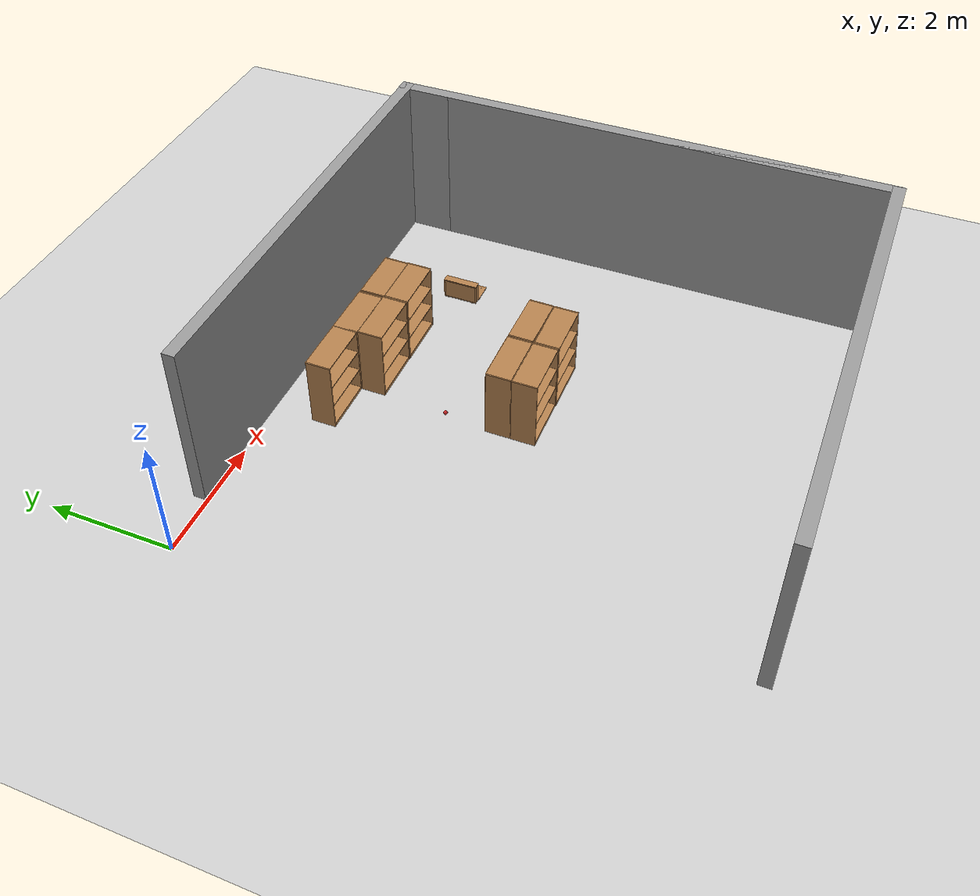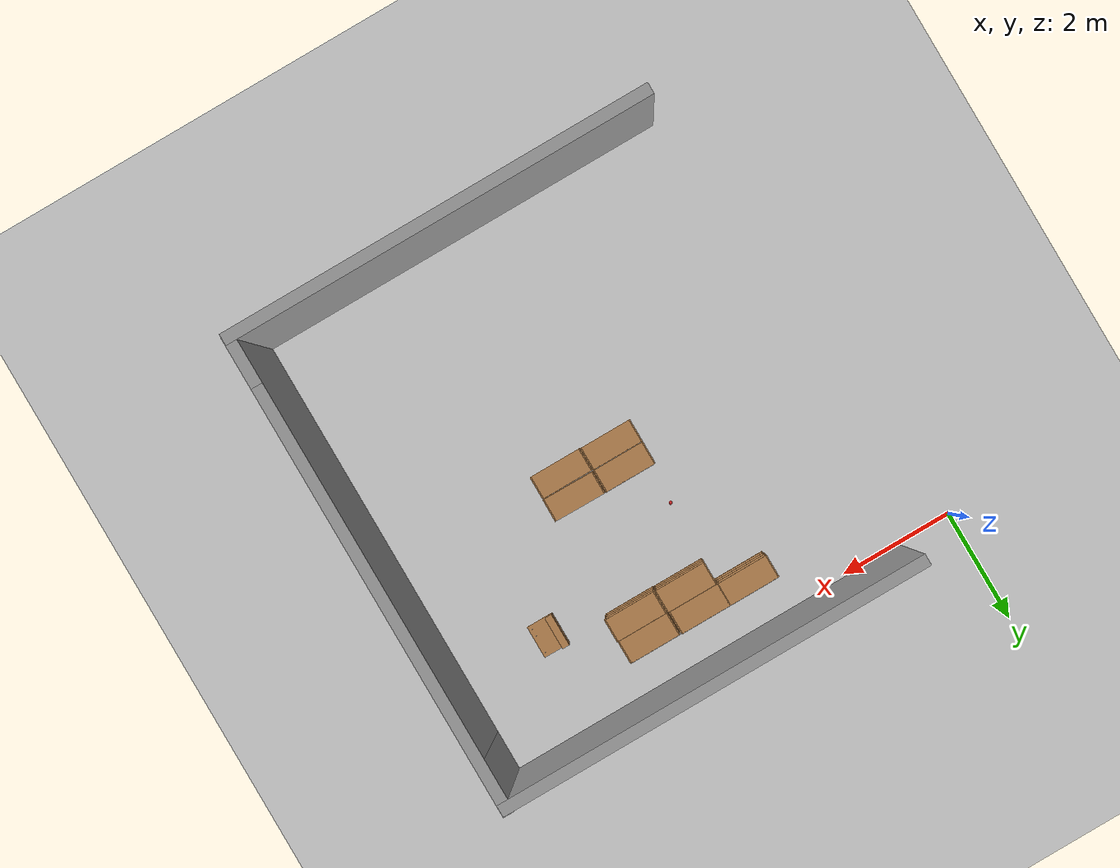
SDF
<sdf version="1.6">
 <world name="default">
  <model name="ground_plane">
   <static>1</static>
   <link name="link">
    <collision name="collision">
     <geometry><plane><normal>0 0 1</normal><size>100 100</size></plane></geometry>
     <surface><friction><ode><mu>100</mu><mu2>50</mu2></ode></friction></surface>
    </collision>
    <visual name="visual">
     <cast_shadows>0</cast_shadows>
     <geometry><plane><normal>0 0 1</normal><size>100 100</size></plane></geometry>
     <material>
      <script><uri>file://media/materials/scripts/gazebo.material</uri><name>Gazebo/Grey</name></script>
     </material>
    </visual>
   </link>
  </model>
  <model name="bookshelf_clone_1">
   <static>1</static>
   <link name="link">
    <inertial><mass>1</mass></inertial>
    <collision name="back">
     <pose>0 0.005 0.6 0 -0 0</pose>
     <geometry><box><size>0.9 0.01 1.2</size></box></geometry>
    </collision>
    <visual name="visual1">
     <pose>0 0.005 0.6 0 -0 0</pose>
     <geometry><box><size>0.9 0.01 1.2</size></box></geometry>
     <material>
      <script><uri>file://media/materials/scripts/gazebo.material</uri><name>Gazebo/Wood</name></script>
     </material>
    </visual>
    <collision name="left_side">
     <pose>0.45 -0.195 0.6 0 -0 0</pose>
     <geometry><box><size>0.02 0.4 1.2</size></box></geometry>
    </collision>
    <visual name="visual2">
     <pose>0.45 -0.195 0.6 0 -0 0</pose>
     <geometry><box><size>0.02 0.4 1.2</size></box></geometry>
     <material>
      <script><uri>file://media/materials/scripts/gazebo.material</uri><name>Gazebo/Wood</name></script>
     </material>
    </visual>
    <collision name="right_side">
     <pose>-0.45 -0.195 0.6 0 -0 0</pose>
     <geometry><box><size>0.02 0.4 1.2</size></box></geometry>
    </collision>
    <visual name="visual3">
     <pose>-0.45 -0.195 0.6 0 -0 0</pose>
     <geometry><box><size>0.02 0.4 1.2</size></box></geometry>
     <material>
      <script><uri>file://media/materials/scripts/gazebo.material</uri><name>Gazebo/Wood</name></script>
     </material>
    </visual>
    <collision name="bottom">
     <pose>0 -0.195 0.03 0 -0 0</pose>
     <geometry><box><size>0.88 0.4 0.06</size></box></geometry>
    </collision>
    <visual name="visual4">
     <pose>0 -0.195 0.03 0 -0 0</pose>
     <geometry><box><size>0.88 0.4 0.06</size></box></geometry>
     <material>
      <script><uri>file://media/materials/scripts/gazebo.material</uri><name>Gazebo/Wood</name></script>
     </material>
    </visual>
    <collision name="top">
     <pose>0 -0.195 1.19 0 -0 0</pose>
     <geometry><box><size>0.88 0.4 0.02</size></box></geometry>
    </collision>
    <visual name="visual5">
     <pose>0 -0.195 1.19 0 -0 0</pose>
     <geometry><box><size>0.88 0.4 0.02</size></box></geometry>
     <material>
      <script><uri>file://media/materials/scripts/gazebo.material</uri><name>Gazebo/Wood</name></script>
     </material>
    </visual>
    <collision name="low_shelf">
     <pose>0 -0.195 0.43 0 -0 0</pose>
     <geometry><box><size>0.88 0.4 0.02</size></box></geometry>
    </collision>
    <visual name="visual6">
     <pose>0 -0.195 0.43 0 -0 0</pose>
     <geometry><box><size>0.88 0.4 0.02</size></box></geometry>
     <material>
      <script><uri>file://media/materials/scripts/gazebo.material</uri><name>Gazebo/Wood</name></script>
     </material>
    </visual>
    <collision name="high_shelf">
     <pose>0 -0.195 0.8 0 -0 0</pose>
     <geometry><box><size>0.88 0.4 0.02</size></box></geometry>
    </collision>
    <visual name="visual7">
     <pose>0 -0.195 0.8 0 -0 0</pose>
     <geometry><box><size>0.88 0.4 0.02</size></box></geometry>
     <material>
      <script><uri>file://media/materials/scripts/gazebo.material</uri><name>Gazebo/Wood</name></script>
     </material>
    </visual>
   </link>
   <pose>4.34765 -1.03859 0 0 -0 0</pose>
  </model>
  <model name="bookshelf_clone_2">
   <static>1</static>
   <link name="link">
    <inertial><mass>1</mass></inertial>
    <collision name="back">
     <pose>0 0.005 0.6 0 -0 0</pose>
     <geometry><box><size>0.9 0.01 1.2</size></box></geometry>
    </collision>
    <visual name="visual1">
     <pose>0 0.005 0.6 0 -0 0</pose>
     <geometry><box><size>0.9 0.01 1.2</size></box></geometry>
     <material>
      <script><uri>file://media/materials/scripts/gazebo.material</uri><name>Gazebo/Wood</name></script>
     </material>
    </visual>
    <collision name="left_side">
     <pose>0.45 -0.195 0.6 0 -0 0</pose>
     <geometry><box><size>0.02 0.4 1.2</size></box></geometry>
    </collision>
    <visual name="visual2">
     <pose>0.45 -0.195 0.6 0 -0 0</pose>
     <geometry><box><size>0.02 0.4 1.2</size></box></geometry>
     <material>
      <script><uri>file://media/materials/scripts/gazebo.material</uri><name>Gazebo/Wood</name></script>
     </material>
    </visual>
    <collision name="right_side">
     <pose>-0.45 -0.195 0.6 0 -0 0</pose>
     <geometry><box><size>0.02 0.4 1.2</size></box></geometry>
    </collision>
    <visual name="visual3">
     <pose>-0.45 -0.195 0.6 0 -0 0</pose>
     <geometry><box><size>0.02 0.4 1.2</size></box></geometry>
     <material>
      <script><uri>file://media/materials/scripts/gazebo.material</uri><name>Gazebo/Wood</name></script>
     </material>
    </visual>
    <collision name="bottom">
     <pose>0 -0.195 0.03 0 -0 0</pose>
     <geometry><box><size>0.88 0.4 0.06</size></box></geometry>
    </collision>
    <visual name="visual4">
     <pose>0 -0.195 0.03 0 -0 0</pose>
     <geometry><box><size>0.88 0.4 0.06</size></box></geometry>
     <material>
      <script><uri>file://media/materials/scripts/gazebo.material</uri><name>Gazebo/Wood</name></script>
     </material>
    </visual>
    <collision name="top">
     <pose>0 -0.195 1.19 0 -0 0</pose>
     <geometry><box><size>0.88 0.4 0.02</size></box></geometry>
    </collision>
    <visual name="visual5">
     <pose>0 -0.195 1.19 0 -0 0</pose>
     <geometry><box><size>0.88 0.4 0.02</size></box></geometry>
     <material>
      <script><uri>file://media/materials/scripts/gazebo.material</uri><name>Gazebo/Wood</name></script>
     </material>
    </visual>
    <collision name="low_shelf">
     <pose>0 -0.195 0.43 0 -0 0</pose>
     <geometry><box><size>0.88 0.4 0.02</size></box></geometry>
    </collision>
    <visual name="visual6">
     <pose>0 -0.195 0.43 0 -0 0</pose>
     <geometry><box><size>0.88 0.4 0.02</size></box></geometry>
     <material>
      <script><uri>file://media/materials/scripts/gazebo.material</uri><name>Gazebo/Wood</name></script>
     </material>
    </visual>
    <collision name="high_shelf">
     <pose>0 -0.195 0.8 0 -0 0</pose>
     <geometry><box><size>0.88 0.4 0.02</size></box></geometry>
    </collision>
    <visual name="visual7">
     <pose>0 -0.195 0.8 0 -0 0</pose>
     <geometry><box><size>0.88 0.4 0.02</size></box></geometry>
     <material>
      <script><uri>file://media/materials/scripts/gazebo.material</uri><name>Gazebo/Wood</name></script>
     </material>
    </visual>
   </link>
   <pose>5.27168 -1.04513 0 0 -0 0</pose>
  </model>
  <model name="bookshelf_clone_6">
   <static>1</static>
   <link name="link">
    <inertial><mass>1</mass></inertial>
    <collision name="back">
     <pose>0 0.005 0.6 0 -0 0</pose>
     <geometry><box><size>0.9 0.01 1.2</size></box></geometry>
    </collision>
    <visual name="visual1">
     <pose>0 0.005 0.6 0 -0 0</pose>
     <geometry><box><size>0.9 0.01 1.2</size></box></geometry>
     <material>
      <script><uri>file://media/materials/scripts/gazebo.material</uri><name>Gazebo/Wood</name></script>
     </material>
    </visual>
    <collision name="left_side">
     <pose>0.45 -0.195 0.6 0 -0 0</pose>
     <geometry><box><size>0.02 0.4 1.2</size></box></geometry>
    </collision>
    <visual name="visual2">
     <pose>0.45 -0.195 0.6 0 -0 0</pose>
     <geometry><box><size>0.02 0.4 1.2</size></box></geometry>
     <material>
      <script><uri>file://media/materials/scripts/gazebo.material</uri><name>Gazebo/Wood</name></script>
     </material>
    </visual>
    <collision name="right_side">
     <pose>-0.45 -0.195 0.6 0 -0 0</pose>
     <geometry><box><size>0.02 0.4 1.2</size></box></geometry>
    </collision>
    <visual name="visual3">
     <pose>-0.45 -0.195 0.6 0 -0 0</pose>
     <geometry><box><size>0.02 0.4 1.2</size></box></geometry>
     <material>
      <script><uri>file://media/materials/scripts/gazebo.material</uri><name>Gazebo/Wood</name></script>
     </material>
    </visual>
    <collision name="bottom">
     <pose>0 -0.195 0.03 0 -0 0</pose>
     <geometry><box><size>0.88 0.4 0.06</size></box></geometry>
    </collision>
    <visual name="visual4">
     <pose>0 -0.195 0.03 0 -0 0</pose>
     <geometry><box><size>0.88 0.4 0.06</size></box></geometry>
     <material>
      <script><uri>file://media/materials/scripts/gazebo.material</uri><name>Gazebo/Wood</name></script>
     </material>
    </visual>
    <collision name="top">
     <pose>0 -0.195 1.19 0 -0 0</pose>
     <geometry><box><size>0.88 0.4 0.02</size></box></geometry>
    </collision>
    <visual name="visual5">
     <pose>0 -0.195 1.19 0 -0 0</pose>
     <geometry><box><size>0.88 0.4 0.02</size></box></geometry>
     <material>
      <script><uri>file://media/materials/scripts/gazebo.material</uri><name>Gazebo/Wood</name></script>
     </material>
    </visual>
    <collision name="low_shelf">
     <pose>0 -0.195 0.43 0 -0 0</pose>
     <geometry><box><size>0.88 0.4 0.02</size></box></geometry>
    </collision>
    <visual name="visual6">
     <pose>0 -0.195 0.43 0 -0 0</pose>
     <geometry><box><size>0.88 0.4 0.02</size></box></geometry>
     <material>
      <script><uri>file://media/materials/scripts/gazebo.material</uri><name>Gazebo/Wood</name></script>
     </material>
    </visual>
    <collision name="high_shelf">
     <pose>0 -0.195 0.8 0 -0 0</pose>
     <geometry><box><size>0.88 0.4 0.02</size></box></geometry>
    </collision>
    <visual name="visual7">
     <pose>0 -0.195 0.8 0 -0 0</pose>
     <geometry><box><size>0.88 0.4 0.02</size></box></geometry>
     <material>
      <script><uri>file://media/materials/scripts/gazebo.material</uri><name>Gazebo/Wood</name></script>
     </material>
    </visual>
   </link>
   <pose>4.21731 -3.60193 0 0 -0 0</pose>
  </model>
  <model name="bookshelf_clone_7">
   <static>1</static>
   <link name="link">
    <inertial><mass>1</mass></inertial>
    <collision name="back">
     <pose>0 0.005 0.6 0 -0 0</pose>
     <geometry><box><size>0.9 0.01 1.2</size></box></geometry>
    </collision>
    <visual name="visual1">
     <pose>0 0.005 0.6 0 -0 0</pose>
     <geometry><box><size>0.9 0.01 1.2</size></box></geometry>
     <material>
      <script><uri>file://media/materials/scripts/gazebo.material</uri><name>Gazebo/Wood</name></script>
     </material>
    </visual>
    <collision name="left_side">
     <pose>0.45 -0.195 0.6 0 -0 0</pose>
     <geometry><box><size>0.02 0.4 1.2</size></box></geometry>
    </collision>
    <visual name="visual2">
     <pose>0.45 -0.195 0.6 0 -0 0</pose>
     <geometry><box><size>0.02 0.4 1.2</size></box></geometry>
     <material>
      <script><uri>file://media/materials/scripts/gazebo.material</uri><name>Gazebo/Wood</name></script>
     </material>
    </visual>
    <collision name="right_side">
     <pose>-0.45 -0.195 0.6 0 -0 0</pose>
     <geometry><box><size>0.02 0.4 1.2</size></box></geometry>
    </collision>
    <visual name="visual3">
     <pose>-0.45 -0.195 0.6 0 -0 0</pose>
     <geometry><box><size>0.02 0.4 1.2</size></box></geometry>
     <material>
      <script><uri>file://media/materials/scripts/gazebo.material</uri><name>Gazebo/Wood</name></script>
     </material>
    </visual>
    <collision name="bottom">
     <pose>0 -0.195 0.03 0 -0 0</pose>
     <geometry><box><size>0.88 0.4 0.06</size></box></geometry>
    </collision>
    <visual name="visual4">
     <pose>0 -0.195 0.03 0 -0 0</pose>
     <geometry><box><size>0.88 0.4 0.06</size></box></geometry>
     <material>
      <script><uri>file://media/materials/scripts/gazebo.material</uri><name>Gazebo/Wood</name></script>
     </material>
    </visual>
    <collision name="top">
     <pose>0 -0.195 1.19 0 -0 0</pose>
     <geometry><box><size>0.88 0.4 0.02</size></box></geometry>
    </collision>
    <visual name="visual5">
     <pose>0 -0.195 1.19 0 -0 0</pose>
     <geometry><box><size>0.88 0.4 0.02</size></box></geometry>
     <material>
      <script><uri>file://media/materials/scripts/gazebo.material</uri><name>Gazebo/Wood</name></script>
     </material>
    </visual>
    <collision name="low_shelf">
     <pose>0 -0.195 0.43 0 -0 0</pose>
     <geometry><box><size>0.88 0.4 0.02</size></box></geometry>
    </collision>
    <visual name="visual6">
     <pose>0 -0.195 0.43 0 -0 0</pose>
     <geometry><box><size>0.88 0.4 0.02</size></box></geometry>
     <material>
      <script><uri>file://media/materials/scripts/gazebo.material</uri><name>Gazebo/Wood</name></script>
     </material>
    </visual>
    <collision name="high_shelf">
     <pose>0 -0.195 0.8 0 -0 0</pose>
     <geometry><box><size>0.88 0.4 0.02</size></box></geometry>
    </collision>
    <visual name="visual7">
     <pose>0 -0.195 0.8 0 -0 0</pose>
     <geometry><box><size>0.88 0.4 0.02</size></box></geometry>
     <material>
      <script><uri>file://media/materials/scripts/gazebo.material</uri><name>Gazebo/Wood</name></script>
     </material>
    </visual>
   </link>
   <pose>5.14115 -3.60977 0 0 -0 0</pose>
  </model>
  <model name="bookshelf_clone_8">
   <static>1</static>
   <link name="link">
    <inertial><mass>1</mass></inertial>
    <collision name="back">
     <pose>0 0.005 0.6 0 -0 0</pose>
     <geometry><box><size>0.9 0.01 1.2</size></box></geometry>
    </collision>
    <visual name="visual1">
     <pose>0 0.005 0.6 0 -0 0</pose>
     <geometry><box><size>0.9 0.01 1.2</size></box></geometry>
     <material>
      <script><uri>file://media/materials/scripts/gazebo.material</uri><name>Gazebo/Wood</name></script>
     </material>
    </visual>
    <collision name="left_side">
     <pose>0.45 -0.195 0.6 0 -0 0</pose>
     <geometry><box><size>0.02 0.4 1.2</size></box></geometry>
    </collision>
    <visual name="visual2">
     <pose>0.45 -0.195 0.6 0 -0 0</pose>
     <geometry><box><size>0.02 0.4 1.2</size></box></geometry>
     <material>
      <script><uri>file://media/materials/scripts/gazebo.material</uri><name>Gazebo/Wood</name></script>
     </material>
    </visual>
    <collision name="right_side">
     <pose>-0.45 -0.195 0.6 0 -0 0</pose>
     <geometry><box><size>0.02 0.4 1.2</size></box></geometry>
    </collision>
    <visual name="visual3">
     <pose>-0.45 -0.195 0.6 0 -0 0</pose>
     <geometry><box><size>0.02 0.4 1.2</size></box></geometry>
     <material>
      <script><uri>file://media/materials/scripts/gazebo.material</uri><name>Gazebo/Wood</name></script>
     </material>
    </visual>
    <collision name="bottom">
     <pose>0 -0.195 0.03 0 -0 0</pose>
     <geometry><box><size>0.88 0.4 0.06</size></box></geometry>
    </collision>
    <visual name="visual4">
     <pose>0 -0.195 0.03 0 -0 0</pose>
     <geometry><box><size>0.88 0.4 0.06</size></box></geometry>
     <material>
      <script><uri>file://media/materials/scripts/gazebo.material</uri><name>Gazebo/Wood</name></script>
     </material>
    </visual>
    <collision name="top">
     <pose>0 -0.195 1.19 0 -0 0</pose>
     <geometry><box><size>0.88 0.4 0.02</size></box></geometry>
    </collision>
    <visual name="visual5">
     <pose>0 -0.195 1.19 0 -0 0</pose>
     <geometry><box><size>0.88 0.4 0.02</size></box></geometry>
     <material>
      <script><uri>file://media/materials/scripts/gazebo.material</uri><name>Gazebo/Wood</name></script>
     </material>
    </visual>
    <collision name="low_shelf">
     <pose>0 -0.195 0.43 0 -0 0</pose>
     <geometry><box><size>0.88 0.4 0.02</size></box></geometry>
    </collision>
    <visual name="visual6">
     <pose>0 -0.195 0.43 0 -0 0</pose>
     <geometry><box><size>0.88 0.4 0.02</size></box></geometry>
     <material>
      <script><uri>file://media/materials/scripts/gazebo.material</uri><name>Gazebo/Wood</name></script>
     </material>
    </visual>
    <collision name="high_shelf">
     <pose>0 -0.195 0.8 0 -0 0</pose>
     <geometry><box><size>0.88 0.4 0.02</size></box></geometry>
    </collision>
    <visual name="visual7">
     <pose>0 -0.195 0.8 0 -0 0</pose>
     <geometry><box><size>0.88 0.4 0.02</size></box></geometry>
     <material>
      <script><uri>file://media/materials/scripts/gazebo.material</uri><name>Gazebo/Wood</name></script>
     </material>
    </visual>
   </link>
   <pose>5.14519 -3.58129 0 0 -0 3.13199</pose>
  </model>
  <model name="bookshelf_clone_9">
   <static>1</static>
   <link name="link">
    <inertial><mass>1</mass></inertial>
    <collision name="back">
     <pose>0 0.005 0.6 0 -0 0</pose>
     <geometry><box><size>0.9 0.01 1.2</size></box></geometry>
    </collision>
    <visual name="visual1">
     <pose>0 0.005 0.6 0 -0 0</pose>
     <geometry><box><size>0.9 0.01 1.2</size></box></geometry>
     <material>
      <script><uri>file://media/materials/scripts/gazebo.material</uri><name>Gazebo/Wood</name></script>
     </material>
    </visual>
    <collision name="left_side">
     <pose>0.45 -0.195 0.6 0 -0 0</pose>
     <geometry><box><size>0.02 0.4 1.2</size></box></geometry>
    </collision>
    <visual name="visual2">
     <pose>0.45 -0.195 0.6 0 -0 0</pose>
     <geometry><box><size>0.02 0.4 1.2</size></box></geometry>
     <material>
      <script><uri>file://media/materials/scripts/gazebo.material</uri><name>Gazebo/Wood</name></script>
     </material>
    </visual>
    <collision name="right_side">
     <pose>-0.45 -0.195 0.6 0 -0 0</pose>
     <geometry><box><size>0.02 0.4 1.2</size></box></geometry>
    </collision>
    <visual name="visual3">
     <pose>-0.45 -0.195 0.6 0 -0 0</pose>
     <geometry><box><size>0.02 0.4 1.2</size></box></geometry>
     <material>
      <script><uri>file://media/materials/scripts/gazebo.material</uri><name>Gazebo/Wood</name></script>
     </material>
    </visual>
    <collision name="bottom">
     <pose>0 -0.195 0.03 0 -0 0</pose>
     <geometry><box><size>0.88 0.4 0.06</size></box></geometry>
    </collision>
    <visual name="visual4">
     <pose>0 -0.195 0.03 0 -0 0</pose>
     <geometry><box><size>0.88 0.4 0.06</size></box></geometry>
     <material>
      <script><uri>file://media/materials/scripts/gazebo.material</uri><name>Gazebo/Wood</name></script>
     </material>
    </visual>
    <collision name="top">
     <pose>0 -0.195 1.19 0 -0 0</pose>
     <geometry><box><size>0.88 0.4 0.02</size></box></geometry>
    </collision>
    <visual name="visual5">
     <pose>0 -0.195 1.19 0 -0 0</pose>
     <geometry><box><size>0.88 0.4 0.02</size></box></geometry>
     <material>
      <script><uri>file://media/materials/scripts/gazebo.material</uri><name>Gazebo/Wood</name></script>
     </material>
    </visual>
    <collision name="low_shelf">
     <pose>0 -0.195 0.43 0 -0 0</pose>
     <geometry><box><size>0.88 0.4 0.02</size></box></geometry>
    </collision>
    <visual name="visual6">
     <pose>0 -0.195 0.43 0 -0 0</pose>
     <geometry><box><size>0.88 0.4 0.02</size></box></geometry>
     <material>
      <script><uri>file://media/materials/scripts/gazebo.material</uri><name>Gazebo/Wood</name></script>
     </material>
    </visual>
    <collision name="high_shelf">
     <pose>0 -0.195 0.8 0 -0 0</pose>
     <geometry><box><size>0.88 0.4 0.02</size></box></geometry>
    </collision>
    <visual name="visual7">
     <pose>0 -0.195 0.8 0 -0 0</pose>
     <geometry><box><size>0.88 0.4 0.02</size></box></geometry>
     <material>
      <script><uri>file://media/materials/scripts/gazebo.material</uri><name>Gazebo/Wood</name></script>
     </material>
    </visual>
   </link>
   <pose>4.21801 -3.18969 0 0 -0 0</pose>
  </model>
  <model name="bookshelf_clone_15">
   <static>1</static>
   <link name="link">
    <inertial><mass>1</mass></inertial>
    <collision name="back">
     <pose>0 0.005 0.6 0 -0 0</pose>
     <geometry><box><size>0.9 0.01 1.2</size></box></geometry>
    </collision>
    <visual name="visual1">
     <pose>0 0.005 0.6 0 -0 0</pose>
     <geometry><box><size>0.9 0.01 1.2</size></box></geometry>
     <material>
      <script><uri>file://media/materials/scripts/gazebo.material</uri><name>Gazebo/Wood</name></script>
     </material>
    </visual>
    <collision name="left_side">
     <pose>0.45 -0.195 0.6 0 -0 0</pose>
     <geometry><box><size>0.02 0.4 1.2</size></box></geometry>
    </collision>
    <visual name="visual2">
     <pose>0.45 -0.195 0.6 0 -0 0</pose>
     <geometry><box><size>0.02 0.4 1.2</size></box></geometry>
     <material>
      <script><uri>file://media/materials/scripts/gazebo.material</uri><name>Gazebo/Wood</name></script>
     </material>
    </visual>
    <collision name="right_side">
     <pose>-0.45 -0.195 0.6 0 -0 0</pose>
     <geometry><box><size>0.02 0.4 1.2</size></box></geometry>
    </collision>
    <visual name="visual3">
     <pose>-0.45 -0.195 0.6 0 -0 0</pose>
     <geometry><box><size>0.02 0.4 1.2</size></box></geometry>
     <material>
      <script><uri>file://media/materials/scripts/gazebo.material</uri><name>Gazebo/Wood</name></script>
     </material>
    </visual>
    <collision name="bottom">
     <pose>0 -0.195 0.03 0 -0 0</pose>
     <geometry><box><size>0.88 0.4 0.06</size></box></geometry>
    </collision>
    <visual name="visual4">
     <pose>0 -0.195 0.03 0 -0 0</pose>
     <geometry><box><size>0.88 0.4 0.06</size></box></geometry>
     <material>
      <script><uri>file://media/materials/scripts/gazebo.material</uri><name>Gazebo/Wood</name></script>
     </material>
    </visual>
    <collision name="top">
     <pose>0 -0.195 1.19 0 -0 0</pose>
     <geometry><box><size>0.88 0.4 0.02</size></box></geometry>
    </collision>
    <visual name="visual5">
     <pose>0 -0.195 1.19 0 -0 0</pose>
     <geometry><box><size>0.88 0.4 0.02</size></box></geometry>
     <material>
      <script><uri>file://media/materials/scripts/gazebo.material</uri><name>Gazebo/Wood</name></script>
     </material>
    </visual>
    <collision name="low_shelf">
     <pose>0 -0.195 0.43 0 -0 0</pose>
     <geometry><box><size>0.88 0.4 0.02</size></box></geometry>
    </collision>
    <visual name="visual6">
     <pose>0 -0.195 0.43 0 -0 0</pose>
     <geometry><box><size>0.88 0.4 0.02</size></box></geometry>
     <material>
      <script><uri>file://media/materials/scripts/gazebo.material</uri><name>Gazebo/Wood</name></script>
     </material>
    </visual>
    <collision name="high_shelf">
     <pose>0 -0.195 0.8 0 -0 0</pose>
     <geometry><box><size>0.88 0.4 0.02</size></box></geometry>
    </collision>
    <visual name="visual7">
     <pose>0 -0.195 0.8 0 -0 0</pose>
     <geometry><box><size>0.88 0.4 0.02</size></box></geometry>
     <material>
      <script><uri>file://media/materials/scripts/gazebo.material</uri><name>Gazebo/Wood</name></script>
     </material>
    </visual>
   </link>
   <pose>3.43517 -0.63168 0 0 -0 0</pose>
  </model>
  <model name="bookshelf_clone_16">
   <static>1</static>
   <link name="link">
    <inertial><mass>1</mass></inertial>
    <collision name="back">
     <pose>0 0.005 0.6 0 -0 0</pose>
     <geometry><box><size>0.9 0.01 1.2</size></box></geometry>
    </collision>
    <visual name="visual1">
     <pose>0 0.005 0.6 0 -0 0</pose>
     <geometry><box><size>0.9 0.01 1.2</size></box></geometry>
     <material>
      <script><uri>file://media/materials/scripts/gazebo.material</uri><name>Gazebo/Wood</name></script>
     </material>
    </visual>
    <collision name="left_side">
     <pose>0.45 -0.195 0.6 0 -0 0</pose>
     <geometry><box><size>0.02 0.4 1.2</size></box></geometry>
    </collision>
    <visual name="visual2">
     <pose>0.45 -0.195 0.6 0 -0 0</pose>
     <geometry><box><size>0.02 0.4 1.2</size></box></geometry>
     <material>
      <script><uri>file://media/materials/scripts/gazebo.material</uri><name>Gazebo/Wood</name></script>
     </material>
    </visual>
    <collision name="right_side">
     <pose>-0.45 -0.195 0.6 0 -0 0</pose>
     <geometry><box><size>0.02 0.4 1.2</size></box></geometry>
    </collision>
    <visual name="visual3">
     <pose>-0.45 -0.195 0.6 0 -0 0</pose>
     <geometry><box><size>0.02 0.4 1.2</size></box></geometry>
     <material>
      <script><uri>file://media/materials/scripts/gazebo.material</uri><name>Gazebo/Wood</name></script>
     </material>
    </visual>
    <collision name="bottom">
     <pose>0 -0.195 0.03 0 -0 0</pose>
     <geometry><box><size>0.88 0.4 0.06</size></box></geometry>
    </collision>
    <visual name="visual4">
     <pose>0 -0.195 0.03 0 -0 0</pose>
     <geometry><box><size>0.88 0.4 0.06</size></box></geometry>
     <material>
      <script><uri>file://media/materials/scripts/gazebo.material</uri><name>Gazebo/Wood</name></script>
     </material>
    </visual>
    <collision name="top">
     <pose>0 -0.195 1.19 0 -0 0</pose>
     <geometry><box><size>0.88 0.4 0.02</size></box></geometry>
    </collision>
    <visual name="visual5">
     <pose>0 -0.195 1.19 0 -0 0</pose>
     <geometry><box><size>0.88 0.4 0.02</size></box></geometry>
     <material>
      <script><uri>file://media/materials/scripts/gazebo.material</uri><name>Gazebo/Wood</name></script>
     </material>
    </visual>
    <collision name="low_shelf">
     <pose>0 -0.195 0.43 0 -0 0</pose>
     <geometry><box><size>0.88 0.4 0.02</size></box></geometry>
    </collision>
    <visual name="visual6">
     <pose>0 -0.195 0.43 0 -0 0</pose>
     <geometry><box><size>0.88 0.4 0.02</size></box></geometry>
     <material>
      <script><uri>file://media/materials/scripts/gazebo.material</uri><name>Gazebo/Wood</name></script>
     </material>
    </visual>
    <collision name="high_shelf">
     <pose>0 -0.195 0.8 0 -0 0</pose>
     <geometry><box><size>0.88 0.4 0.02</size></box></geometry>
    </collision>
    <visual name="visual7">
     <pose>0 -0.195 0.8 0 -0 0</pose>
     <geometry><box><size>0.88 0.4 0.02</size></box></geometry>
     <material>
      <script><uri>file://media/materials/scripts/gazebo.material</uri><name>Gazebo/Wood</name></script>
     </material>
    </visual>
   </link>
   <pose>4.3237 -0.631975 0 0 -0 0</pose>
  </model>
  <model name="bookshelf_clone_17">
   <static>1</static>
   <link name="link">
    <inertial><mass>1</mass></inertial>
    <collision name="back">
     <pose>0 0.005 0.6 0 -0 0</pose>
     <geometry><box><size>0.9 0.01 1.2</size></box></geometry>
    </collision>
    <visual name="visual1">
     <pose>0 0.005 0.6 0 -0 0</pose>
     <geometry><box><size>0.9 0.01 1.2</size></box></geometry>
     <material>
      <script><uri>file://media/materials/scripts/gazebo.material</uri><name>Gazebo/Wood</name></script>
     </material>
    </visual>
    <collision name="left_side">
     <pose>0.45 -0.195 0.6 0 -0 0</pose>
     <geometry><box><size>0.02 0.4 1.2</size></box></geometry>
    </collision>
    <visual name="visual2">
     <pose>0.45 -0.195 0.6 0 -0 0</pose>
     <geometry><box><size>0.02 0.4 1.2</size></box></geometry>
     <material>
      <script><uri>file://media/materials/scripts/gazebo.material</uri><name>Gazebo/Wood</name></script>
     </material>
    </visual>
    <collision name="right_side">
     <pose>-0.45 -0.195 0.6 0 -0 0</pose>
     <geometry><box><size>0.02 0.4 1.2</size></box></geometry>
    </collision>
    <visual name="visual3">
     <pose>-0.45 -0.195 0.6 0 -0 0</pose>
     <geometry><box><size>0.02 0.4 1.2</size></box></geometry>
     <material>
      <script><uri>file://media/materials/scripts/gazebo.material</uri><name>Gazebo/Wood</name></script>
     </material>
    </visual>
    <collision name="bottom">
     <pose>0 -0.195 0.03 0 -0 0</pose>
     <geometry><box><size>0.88 0.4 0.06</size></box></geometry>
    </collision>
    <visual name="visual4">
     <pose>0 -0.195 0.03 0 -0 0</pose>
     <geometry><box><size>0.88 0.4 0.06</size></box></geometry>
     <material>
      <script><uri>file://media/materials/scripts/gazebo.material</uri><name>Gazebo/Wood</name></script>
     </material>
    </visual>
    <collision name="top">
     <pose>0 -0.195 1.19 0 -0 0</pose>
     <geometry><box><size>0.88 0.4 0.02</size></box></geometry>
    </collision>
    <visual name="visual5">
     <pose>0 -0.195 1.19 0 -0 0</pose>
     <geometry><box><size>0.88 0.4 0.02</size></box></geometry>
     <material>
      <script><uri>file://media/materials/scripts/gazebo.material</uri><name>Gazebo/Wood</name></script>
     </material>
    </visual>
    <collision name="low_shelf">
     <pose>0 -0.195 0.43 0 -0 0</pose>
     <geometry><box><size>0.88 0.4 0.02</size></box></geometry>
    </collision>
    <visual name="visual6">
     <pose>0 -0.195 0.43 0 -0 0</pose>
     <geometry><box><size>0.88 0.4 0.02</size></box></geometry>
     <material>
      <script><uri>file://media/materials/scripts/gazebo.material</uri><name>Gazebo/Wood</name></script>
     </material>
    </visual>
    <collision name="high_shelf">
     <pose>0 -0.195 0.8 0 -0 0</pose>
     <geometry><box><size>0.88 0.4 0.02</size></box></geometry>
    </collision>
    <visual name="visual7">
     <pose>0 -0.195 0.8 0 -0 0</pose>
     <geometry><box><size>0.88 0.4 0.02</size></box></geometry>
     <material>
      <script><uri>file://media/materials/scripts/gazebo.material</uri><name>Gazebo/Wood</name></script>
     </material>
    </visual>
   </link>
   <pose>5.26094 -0.64017 0 0 -0 0</pose>
  </model>
  <model name="RoboCup SPL Ball">
   <static>0</static>
   <link name="ball">
    <inertial>
     <mass>0.0056</mass>
     <inertia>
      <ixx>2.37e-06</ixx>
      <iyy>2.37e-06</iyy>
      <izz>2.37e-06</izz>
      <ixy>0</ixy>
      <ixz>0</ixz>
      <iyz>0</iyz>
     </inertia>
    </inertial>
    <collision name="collision"><geometry><sphere><radius>0.0325</radius></sphere></geometry></collision>
    <visual name="visual">
     <geometry><sphere><radius>0.0325</radius></sphere></geometry>
     <material>
      <script><uri>file://media/materials/scripts/gazebo.material</uri><name>Gazebo/RedBright</name></script>
     </material>
    </visual>
   </link>
   <pose>3.86917 -2.48216 0.0325 0 -0 0</pose>
  </model>
  <model name="wooden_case">
   <link name="base">
    <pose>0 0 0.024 0 -0 0</pose>
    <inertial>
     <pose>-0.022184 0 0.171592 0 -0 0</pose>
     <mass>3.96264</mass>
     <inertia>
      <ixx>0.213536</ixx>
      <ixy>0</ixy>
      <ixz>0.000779377</ixz>
      <iyy>0.0708943</iyy>
      <iyz>0</iyz>
      <izz>0.154604</izz>
     </inertia>
    </inertial>
    <collision name="collision_back">
     <pose>-0.053975 0 0.1778 0 -0 0</pose>
     <geometry><box><size>0.01905 0.5461 0.3175</size></box></geometry>
     <surface>
      <contact>
       <poissons_ratio>0.347</poissons_ratio>
       <elastic_modulus>8.8e+09</elastic_modulus>
       <ode><kp>100000</kp><kd>100</kd><max_vel>100</max_vel><min_depth>0.001</min_depth></ode>
      </contact>
      <friction>
       <torsional>
        <coefficient>1</coefficient>
        <use_patch_radius>0</use_patch_radius>
        <surface_radius>0.01</surface_radius>
       </torsional>
      </friction>
     </surface>
    </collision>
    <visual name="visual_back">
     <pose>-0.053975 0 0.1778 0 -0 0</pose>
     <geometry><box><size>0.01905 0.5461 0.3175</size></box></geometry>
     <material>
      <script><uri>file://media/materials/scripts/gazebo.material</uri><name>Gazebo/Wood</name></script>
     </material>
    </visual>
    <collision name="collision_bottom">
     <pose>0 0 0.009525 0 -0 0</pose>
     <geometry><box><size>0.127 0.5842 0.01905</size></box></geometry>
     <surface>
      <contact>
       <poissons_ratio>0.347</poissons_ratio>
       <elastic_modulus>8.8e+09</elastic_modulus>
       <ode><kp>100000</kp><kd>100</kd><max_vel>100</max_vel><min_depth>0.001</min_depth></ode>
      </contact>
      <friction>
       <torsional>
        <coefficient>1</coefficient>
        <use_patch_radius>0</use_patch_radius>
        <surface_radius>0.01</surface_radius>
       </torsional>
      </friction>
     </surface>
    </collision>
    <visual name="visual_bottom">
     <pose>0 0 0.009525 0 -0 0</pose>
     <geometry><box><size>0.127 0.5842 0.01905</size></box></geometry>
     <material>
      <script><uri>file://media/materials/scripts/gazebo.material</uri><name>Gazebo/Wood</name></script>
     </material>
    </visual>
    <collision name="collision_top">
     <pose>0 0 0.346075 0 -0 0</pose>
     <geometry><box><size>0.127 0.5842 0.01905</size></box></geometry>
     <surface>
      <contact>
       <poissons_ratio>0.347</poissons_ratio>
       <elastic_modulus>8.8e+09</elastic_modulus>
       <ode><kp>100000</kp><kd>100</kd><max_vel>100</max_vel><min_depth>0.001</min_depth></ode>
      </contact>
      <friction>
       <torsional>
        <coefficient>1</coefficient>
        <use_patch_radius>0</use_patch_radius>
        <surface_radius>0.01</surface_radius>
       </torsional>
      </friction>
     </surface>
    </collision>
    <visual name="visual_top">
     <pose>0 0 0.346075 0 -0 0</pose>
     <geometry><box><size>0.127 0.5842 0.01905</size></box></geometry>
     <material>
      <script><uri>file://media/materials/scripts/gazebo.material</uri><name>Gazebo/Wood</name></script>
     </material>
    </visual>
    <collision name="collision_left">
     <pose>0 -0.282575 0.1778 0 -0 0</pose>
     <geometry><box><size>0.127 0.01905 0.3175</size></box></geometry>
     <surface>
      <contact>
       <poissons_ratio>0.347</poissons_ratio>
       <elastic_modulus>8.8e+09</elastic_modulus>
       <ode><kp>100000</kp><kd>100</kd><max_vel>100</max_vel><min_depth>0.001</min_depth></ode>
      </contact>
      <friction>
       <torsional>
        <coefficient>1</coefficient>
        <use_patch_radius>0</use_patch_radius>
        <surface_radius>0.01</surface_radius>
       </torsional>
      </friction>
     </surface>
    </collision>
    <visual name="visual_left">
     <pose>0 -0.282575 0.1778 0 -0 0</pose>
     <geometry><box><size>0.127 0.01905 0.3175</size></box></geometry>
     <material>
      <script><uri>file://media/materials/scripts/gazebo.material</uri><name>Gazebo/Wood</name></script>
     </material>
    </visual>
    <collision name="collision_right">
     <pose>0 0.282575 0.1778 0 -0 0</pose>
     <geometry><box><size>0.127 0.01905 0.3175</size></box></geometry>
     <surface>
      <contact>
       <poissons_ratio>0.347</poissons_ratio>
       <elastic_modulus>8.8e+09</elastic_modulus>
       <ode><kp>100000</kp><kd>100</kd><max_vel>100</max_vel><min_depth>0.001</min_depth></ode>
      </contact>
      <friction>
       <torsional>
        <coefficient>1</coefficient>
        <use_patch_radius>0</use_patch_radius>
        <surface_radius>0.01</surface_radius>
       </torsional>
      </friction>
     </surface>
    </collision>
    <visual name="visual_right">
     <pose>0 0.282575 0.1778 0 -0 0</pose>
     <geometry><box><size>0.127 0.01905 0.3175</size></box></geometry>
     <material>
      <script><uri>file://media/materials/scripts/gazebo.material</uri><name>Gazebo/Wood</name></script>
     </material>
    </visual>
    <collision name="collision_block_left">
     <pose>0.0095 -0.2151 -0.012 0 -0 0</pose>
     <geometry><box><size>0.108 0.05 0.024</size></box></geometry>
     <surface>
      <contact>
       <poissons_ratio>0.347</poissons_ratio>
       <elastic_modulus>8.8e+09</elastic_modulus>
       <ode><kp>100000</kp><kd>100</kd><max_vel>100</max_vel><min_depth>0.001</min_depth></ode>
      </contact>
      <friction>
       <torsional>
        <coefficient>1</coefficient>
        <use_patch_radius>0</use_patch_radius>
        <surface_radius>0.01</surface_radius>
       </torsional>
      </friction>
     </surface>
    </collision>
    <visual name="visual_block_left">
     <pose>0.0095 -0.2151 -0.012 0 -0 0</pose>
     <geometry><box><size>0.108 0.05 0.024</size></box></geometry>
     <material>
      <script><uri>file://media/materials/scripts/gazebo.material</uri><name>Gazebo/Wood</name></script>
     </material>
    </visual>
    <collision name="collision_block_right">
     <pose>0.0095 0.2151 -0.012 0 -0 0</pose>
     <geometry><box><size>0.108 0.05 0.024</size></box></geometry>
     <surface>
      <contact>
       <poissons_ratio>0.347</poissons_ratio>
       <elastic_modulus>8.8e+09</elastic_modulus>
       <ode><kp>100000</kp><kd>100</kd><max_vel>100</max_vel><min_depth>0.001</min_depth></ode>
      </contact>
      <friction>
       <torsional>
        <coefficient>1</coefficient>
        <use_patch_radius>0</use_patch_radius>
        <surface_radius>0.01</surface_radius>
       </torsional>
      </friction>
     </surface>
    </collision>
    <visual name="visual_block_right">
     <pose>0.0095 0.2151 -0.012 0 -0 0</pose>
     <geometry><box><size>0.108 0.05 0.024</size></box></geometry>
     <material>
      <script><uri>file://media/materials/scripts/gazebo.material</uri><name>Gazebo/Wood</name></script>
     </material>
    </visual>
   </link>
   <link name="lid">
    <pose>0.243775 0 0.009525 0 -0 0</pose>
    <inertial>
     <mass>1.97874</mass>
     <inertia>
      <ixx>0.0563367</ixx>
      <ixy>0</ixy>
      <ixz>0</ixz>
      <iyy>0.020911</iyy>
      <iyz>0</iyz>
      <izz>0.0771281</izz>
     </inertia>
    </inertial>
    <collision name="collision">
     <geometry><box><size>0.3556 0.5842 0.01905</size></box></geometry>
     <surface>
      <contact>
       <poissons_ratio>0.347</poissons_ratio>
       <elastic_modulus>8.8e+09</elastic_modulus>
       <ode><kp>100000</kp><kd>100</kd><max_vel>100</max_vel><min_depth>0.001</min_depth></ode>
      </contact>
      <friction>
       <torsional>
        <coefficient>1</coefficient>
        <use_patch_radius>0</use_patch_radius>
        <surface_radius>0.01</surface_radius>
       </torsional>
      </friction>
     </surface>
    </collision>
    <visual name="visual">
     <geometry><box><size>0.3556 0.5842 0.01905</size></box></geometry>
     <material>
      <script><uri>file://media/materials/scripts/gazebo.material</uri><name>Gazebo/Wood</name></script>
     </material>
    </visual>
    <visual name="tee_nut_1">
     <pose>0.122 -0.216 0 0 -0 0</pose>
     <geometry><cylinder><radius>0.00635</radius><length>0.0192405</length></cylinder></geometry>
     <material>
      <script><uri>file://media/materials/scripts/gazebo.material</uri><name>Gazebo/Grey</name></script>
     </material>
    </visual>
    <visual name="tee_nut_2">
     <pose>0.122 -0.088 0 0 -0 0</pose>
     <geometry><cylinder><radius>0.00635</radius><length>0.0192405</length></cylinder></geometry>
     <material>
      <script><uri>file://media/materials/scripts/gazebo.material</uri><name>Gazebo/Grey</name></script>
     </material>
    </visual>
    <visual name="tee_nut_3">
     <pose>0.122 0.088 0 0 -0 0</pose>
     <geometry><cylinder><radius>0.00635</radius><length>0.0192405</length></cylinder></geometry>
     <material>
      <script><uri>file://media/materials/scripts/gazebo.material</uri><name>Gazebo/Grey</name></script>
     </material>
    </visual>
    <visual name="tee_nut_4">
     <pose>0.122 0.216 0 0 -0 0</pose>
     <geometry><cylinder><radius>0.00635</radius><length>0.0192405</length></cylinder></geometry>
     <material>
      <script><uri>file://media/materials/scripts/gazebo.material</uri><name>Gazebo/Grey</name></script>
     </material>
    </visual>
   </link>
   <joint name="lid_hinge" type="revolute">
    <pose>-0.1778 0 0.01905 0 -0 0</pose>
    <parent>base</parent>
    <child>lid</child>
    <axis>
     <xyz>0 1 0</xyz>
     <limit><upper>0.523599</upper><lower>-1.5708</lower></limit>
     <use_parent_model_frame>0</use_parent_model_frame>
     <dynamics><spring_reference>0</spring_reference><spring_stiffness>0</spring_stiffness></dynamics>
    </axis>
   </joint>
   <pose>6.54417 -1.61929 -0.001057 0 -0.000429 0</pose>
  </model>
  <model name="grey_wall_clone">
   <static>1</static>
   <link name="link">
    <pose>0 0 1.4 0 -0 0</pose>
    <collision name="collision"><geometry><box><size>7.5 0.2 2.8</size></box></geometry></collision>
    <visual name="visual">
     <cast_shadows>0</cast_shadows>
     <geometry><box><size>7.5 0.2 2.8</size></box></geometry>
     <material>
      <script>
       <uri>model://grey_wall/materials/scripts</uri>
       <uri>model://grey_wall/materials/textures</uri>
       <name>vrc/grey_wall</name>
      </script>
     </material>
    </visual>
   </link>
   <pose>4.7041 0.134768 0 0 -0 0</pose>
  </model>
  <model name="grey_wall_clone_1">
   <static>1</static>
   <link name="link">
    <pose>0 0 1.4 0 -0 0</pose>
    <collision name="collision"><geometry><box><size>7.5 0.2 2.8</size></box></geometry></collision>
    <visual name="visual">
     <cast_shadows>0</cast_shadows>
     <geometry><box><size>7.5 0.2 2.8</size></box></geometry>
     <material>
      <script>
       <uri>model://grey_wall/materials/scripts</uri>
       <uri>model://grey_wall/materials/textures</uri>
       <name>vrc/grey_wall</name>
      </script>
     </material>
    </visual>
   </link>
   <pose>4.704 -8.11643 0 0 -0 0</pose>
  </model>
  <model name="grey_wall_clone_clone">
   <static>1</static>
   <link name="link">
    <pose>0 0 1.4 0 -0 0</pose>
    <collision name="collision"><geometry><box><size>7.5 0.2 2.8</size></box></geometry></collision>
    <visual name="visual">
     <cast_shadows>0</cast_shadows>
     <geometry><box><size>7.5 0.2 2.8</size></box></geometry>
     <material>
      <script>
       <uri>model://grey_wall/materials/scripts</uri>
       <uri>model://grey_wall/materials/textures</uri>
       <name>vrc/grey_wall</name>
      </script>
     </material>
    </visual>
   </link>
   <pose>8.35898 -3.50628 0 0 0 -1.57006</pose>
  </model>
  <model name="grey_wall_clone_clone_clone">
   <static>1</static>
   <link name="link">
    <pose>0 0 1.4 0 -0 0</pose>
    <collision name="collision"><geometry><box><size>7.5 0.2 2.8</size></box></geometry></collision>
    <visual name="visual">
     <cast_shadows>0</cast_shadows>
     <geometry><box><size>7.5 0.2 2.8</size></box></geometry>
     <material>
      <script>
       <uri>model://grey_wall/materials/scripts</uri>
       <uri>model://grey_wall/materials/textures</uri>
       <name>vrc/grey_wall</name>
      </script>
     </material>
    </visual>
   </link>
   <pose>8.35902 -4.41723 0 0 0 -1.57006</pose>
  </model>
 </world>
</sdf>
